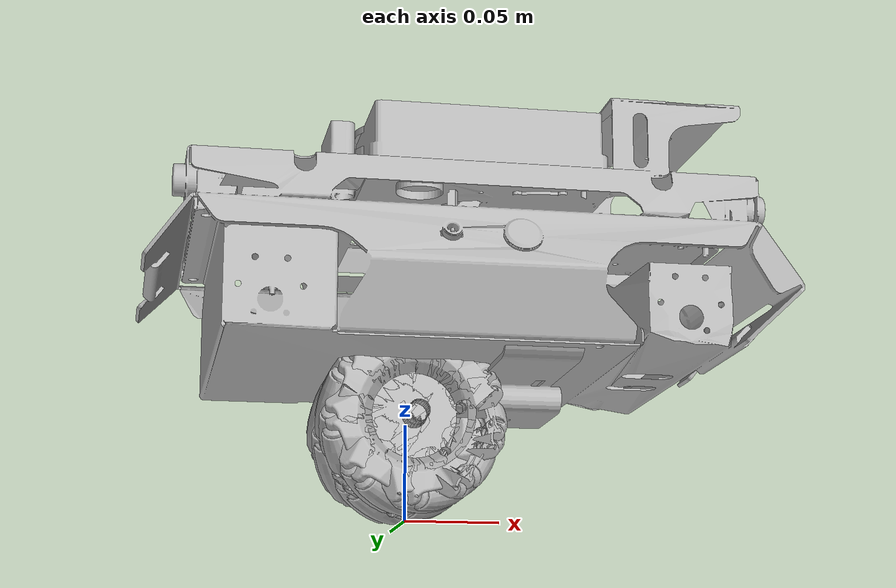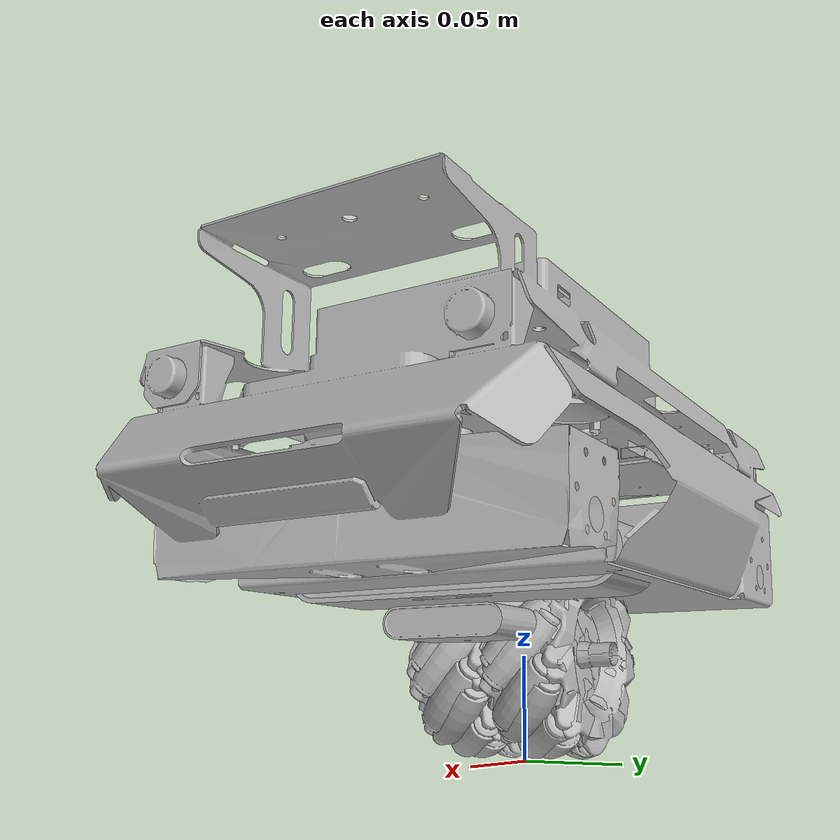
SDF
<?xml version="1.0"?>
<sdf version="1.9">
  <model name="yahboomcar_x3">
    <pose>0 0 0.05 0 0 0</pose>
    <static>false</static>

    <!-- base_link -->
    <link name="base_link">
      <inertial>
        <mass>2.0</mass>
        <inertia ixx="0.02" iyy="0.02" izz="0.03"/>
      </inertial>
      <collision name="base_col">
        <geometry>
          <mesh><uri>../meshes/mecanum/base_link.STL</uri></mesh>
        </geometry>
      </collision>
      <visual name="base_vis">
        <geometry>
          <mesh><uri>../meshes/mecanum/base_link.STL</uri></mesh>
        </geometry>
      </visual>
    </link>

    <!-- wheels (mesh + 위치 + 축 회전) -->
    <link name="front_left_wheel">
      <inertial><mass>0.2</mass></inertial>
      <collision name="col"><geometry><mesh><uri>../meshes/mecanum/front_left_wheel.STL</uri></mesh></geometry></collision>
      <visual    name="vis"><geometry><mesh><uri>../meshes/mecanum/front_left_wheel.STL</uri></mesh></geometry></visual>
    </link>
    <joint name="front_left_joint" type="continuous">
      <parent>base_link</parent><child>front_left_wheel</child>
      <!-- y=+0.0845 / 바퀴 축을 Y로 정렬하기 위해 roll=0,pitch=1.5708 -->
      <pose> 0.08  0.0845 -0.05  0 1.5708 0</pose>
      <axis><xyz>0 1 0</xyz></axis>
    </joint>

    <link name="front_right_wheel">
      <inertial><mass>0.2</mass></inertial>
      <collision name="col"><geometry><mesh><uri>../meshes/mecanum/front_right_wheel.STL</uri></mesh></geometry></collision>
      <visual    name="vis"><geometry><mesh><uri>../meshes/mecanum/front_right_wheel.STL</uri></mesh></geometry></visual>
    </link>
    <joint name="front_right_joint" type="continuous">
      <parent>base_link</parent><child>front_right_wheel</child>
      <pose> 0.08 -0.0845 -0.05  0 1.5708 0</pose>
      <axis><xyz>0 1 0</xyz></axis>
    </joint>

    <link name="back_left_wheel">
      <inertial><mass>0.2</mass></inertial>
      <collision name="col"><geometry><mesh><uri>../meshes/mecanum/back_left_wheel.STL</uri></mesh></geometry></collision>
      <visual    name="vis"><geometry><mesh><uri>../meshes/mecanum/back_left_wheel.STL</uri></mesh></geometry></visual>
    </link>
    <joint name="back_left_joint" type="continuous">
      <parent>base_link</parent><child>back_left_wheel</child>
      <pose>-0.08  0.0845 -0.05  0 1.5708 0</pose>
      <axis><xyz>0 1 0</xyz></axis>
    </joint>

    <link name="back_right_wheel">
      <inertial><mass>0.2</mass></inertial>
      <collision name="col"><geometry><mesh><uri>../meshes/mecanum/back_right_wheel.STL</uri></mesh></geometry></collision>
      <visual    name="vis"><geometry><mesh><uri>../meshes/mecanum/back_right_wheel.STL</uri></mesh></geometry></visual>
    </link>
    <joint name="back_right_joint" type="continuous">
      <parent>base_link</parent><child>back_right_wheel</child>
      <pose>-0.08 -0.0845 -0.05  0 1.5708 0</pose>
      <axis><xyz>0 1 0</xyz></axis>
    </joint>

    <!-- LiDAR (mesh + 센서) -->
    <link name="lidar_link">
      <pose>0 0 0.15 0 0 0</pose>
      <collision name="col"><geometry><mesh><uri>../meshes/sensor/laser_link.STL</uri></mesh></geometry></collision>
      <visual    name="vis"><geometry><mesh><uri>../meshes/sensor/laser_link.STL</uri></mesh></geometry></visual>

      <sensor name="lidar" type="lidar">
        <update_rate>10</update_rate>
        <topic>scan</topic>
        <lidar>
          <horizontal>
            <samples>360</samples>
            <resolution>1</resolution>
            <min_angle>-3.14159</min_angle>
            <max_angle> 3.14159</max_angle>
          </horizontal>
          <range><min>0.1</min><max>8.0</max></range>
        </lidar>
      </sensor>
    </link>
    <joint name="lidar_joint" type="fixed">
      <parent>base_link</parent><child>lidar_link</child>
    </joint>

    <!-- (옵션) 카메라 하우징 메쉬만 표시 -->
    <link name="camera_link">
      <pose>0.057105 0.000018 0.03755 0 0 0</pose>
      <collision name="col"><geometry><mesh><uri>../meshes/sensor/camera_link.STL</uri></mesh></geometry></collision>
      <visual    name="vis"><geometry><mesh><uri>../meshes/sensor/camera_link.STL</uri></mesh></geometry></visual>
    </link>
    <joint name="camera_joint" type="fixed">
      <parent>base_link</parent><child>camera_link</child>
    </joint>

    <!-- DiffDrive 시스템 (4륜: 좌/우 2개씩 묶음) -->
    <plugin name="gz::sim::systems::DiffDrive" filename="gz-sim-diff-drive-system">
      <left_joint>front_left_joint</left_joint>
      <left_joint>back_left_joint</left_joint>
      <right_joint>front_right_joint</right_joint>
      <right_joint>back_right_joint</right_joint>
      <wheel_separation>0.169</wheel_separation>
      <wheel_radius>0.05</wheel_radius>
      <odom_publish_frequency>50</odom_publish_frequency>
      <cmd_vel_topic>cmd_vel</cmd_vel_topic>
      <odom_topic>odometry</odom_topic>
      <use_parent_model_frame>true</use_parent_model_frame>
    </plugin>
  </model>
</sdf>
